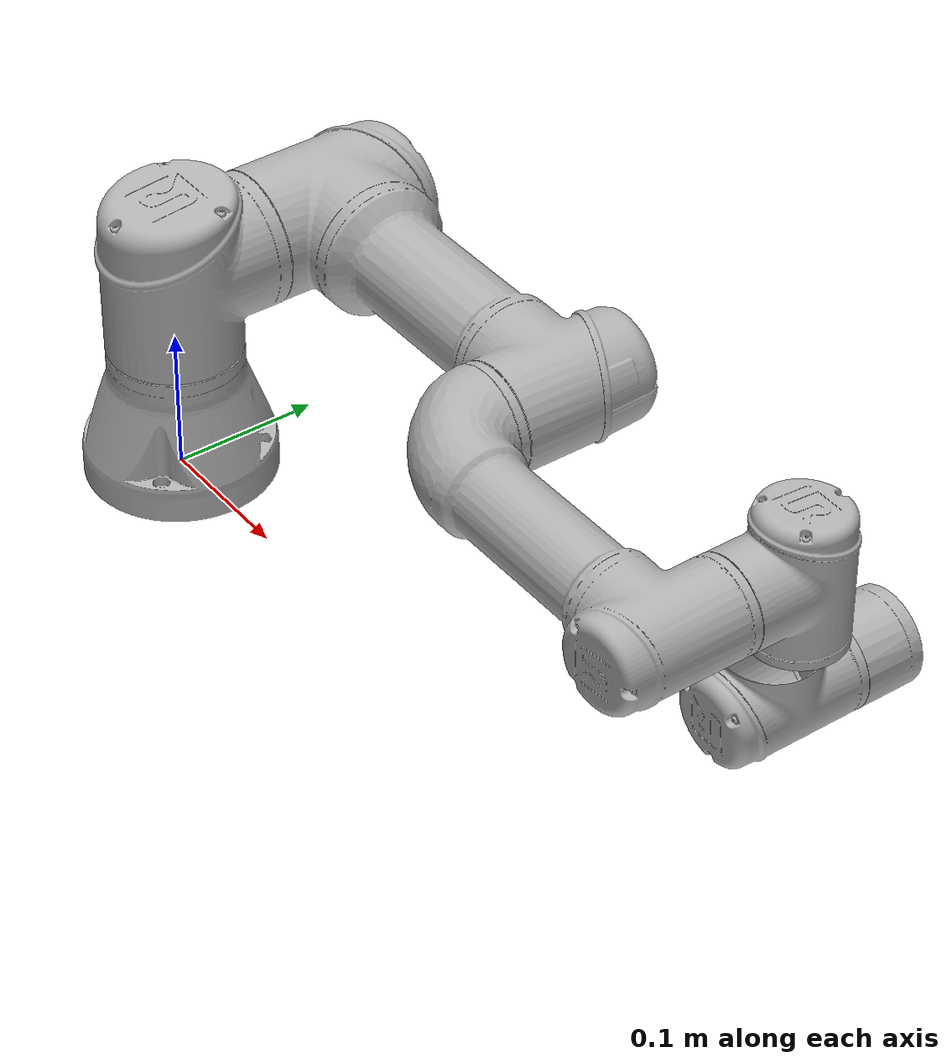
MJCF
<mujoco model="ur3">
  <compiler angle="radian" meshdir="../ur_description/meshes"/>
  <asset>
    <mesh name="base" file="base.stl"/>
    <mesh name="shoulder" file="shoulder.stl"/>
    <mesh name="upperarm" file="upperarm.stl"/>
    <mesh name="forearm" file="forearm.stl"/>
    <mesh name="wrist1" file="wrist1.stl"/>
    <mesh name="wrist2" file="wrist2.stl"/>
    <mesh name="wrist3" file="wrist3.stl"/>
  </asset>
  <worldbody>
    <body name="base_link">
      <inertial pos="0.000000000 0.000000000 0.000000000" quat="0.5 0.5 -0.5 0.5" mass="2.63" diaginertia="0.005955750 0.003383920 0.003336670"/>
      <geom type="mesh" contype="0" conaffinity="0" group="1" density="0" rgba="0.7 0.7 0.7 1" mesh="base"/>
      <geom type="mesh" rgba="0.7 0.7 0.7 1" mesh="base"/>
      <body name="shoulder_link" pos="0 0 0.1519">
        <inertial pos="0.000000000 0.000000000 0.000000000" mass="2.63" diaginertia="0.008423910 0.008376660 0.005955750"/>
        <joint name="shoulder_pan_joint" pos="0 0 0" axis="0 0 1" range="-6.28319 6.28319" actuatorfrcrange="-330 330" armature="0.000012400"/>
        <geom type="mesh" contype="0" conaffinity="0" group="1" density="0" rgba="0.7 0.7 0.7 1" mesh="shoulder"/>
        <geom type="mesh" rgba="0.7 0.7 0.7 1" mesh="shoulder"/>
        <body name="upper_arm_link" pos="0 0.1198 0" quat="0.707107 0 0.707107 0">
          <inertial pos="0.000000000 0.000000000 0.140775556" mass="4.05" diaginertia="0.029954838 0.029907588 0.009949500"/>
          <joint name="shoulder_lift_joint" pos="0 0 0" axis="0 1 0" range="-6.28319 6.28319" actuatorfrcrange="-330 330" armature="0.000012400"/>
          <geom type="mesh" contype="0" conaffinity="0" group="1" density="0" rgba="0.7 0.7 0.7 1" mesh="upperarm"/>
          <geom type="mesh" rgba="0.7 0.7 0.7 1" mesh="upperarm"/>
          <body name="forearm_link" pos="0 -0.0925 0.24365">
            <inertial pos="0.000000000 0.000000000 0.142166667" mass="1.8900000000000001" diaginertia="0.011652494 0.011605244 0.003874500"/>
            <joint name="elbow_joint" pos="0 0 0" axis="0 1 0" range="-3.14159 3.14159" actuatorfrcrange="-150 150" armature="0.000012400"/>
            <geom type="mesh" contype="0" conaffinity="0" group="1" density="0" rgba="0.7 0.7 0.7 1" mesh="forearm"/>
            <geom type="mesh" rgba="0.7 0.7 0.7 1" mesh="forearm"/>
            <body name="wrist_1_link" pos="0 0 0.21325" quat="0.707107 0 0.707107 0">
              <inertial pos="0.000000000 0.037469580 0.000000000" quat="0.5 0.5 -0.5 0.5" mass="1.4300000000000002" diaginertia="0.005130180 0.002415750 0.004917930"/>
              <joint name="wrist_1_joint" pos="0 0 0" axis="0 1 0" range="-6.28319 6.28319" actuatorfrcrange="-54 54" armature="0.000012400"/>
              <geom type="mesh" contype="0" conaffinity="0" group="1" density="0" rgba="0.7 0.7 0.7 1" mesh="wrist1"/>
              <geom type="mesh" rgba="0.7 0.7 0.7 1" mesh="wrist1"/>
              <body name="wrist_2_link" pos="0 0.08505 0">
                <inertial pos="0.000000000 0.000000000 0.037601748" quat="0.5 0.5 -0.5 0.5" mass="1.4300000000000002" diaginertia="0.005148197 0.004935947 0.002415750"/>
                <joint name="wrist_2_joint" pos="0 0 0" axis="0 0 1" range="-6.28319 6.28319" actuatorfrcrange="-54 54" armature="0.000012400"/>
                <geom type="mesh" contype="0" conaffinity="0" group="1" density="0" rgba="0.7 0.7 0.7 1" mesh="wrist2"/>
                <geom type="mesh" rgba="0.7 0.7 0.7 1" mesh="wrist2"/>
                <body name="wrist_3_link" pos="0 0 0.08535">
                  <inertial pos="0 0 0" quat="0.5 0.5 -0.5 0.5" mass="0.35" diaginertia="0.000984375 0.000912187 0.000912187"/>
                  <joint name="wrist_3_joint" pos="0 0 0" axis="0 1 0" range="-6.28319 6.28319" actuatorfrcrange="-54 54" armature="0.000012400"/>
                  <geom type="mesh" contype="0" conaffinity="0" group="1" density="0" rgba="0.7 0.7 0.7 1" mesh="wrist3"/>
                  <geom type="mesh" rgba="0.7 0.7 0.7 1" mesh="wrist3"/>
                  <body name="ee_link" pos="0 0.0819 0" quat="0.707107 0 0 0.707107">
                    <geom size="0.005 0.005 0.005" pos="-0.01 0 0" type="box"/>
                  </body>
                  <!--body name="tool0" pos="0 0.0819 0" quat="0.707107 -0.707107 0 0"/-->
                </body>
              </body>
            </body>
          </body>
        </body>
      </body>
      <body name="base" quat="0 0 0 -1"/>
    </body>
  </worldbody>
  <contact>
    <exclude body1="base_link" body2="shoulder_link"/>
  </contact>
  <actuator>
    <position name="j_shoulder_pan_joint" joint="shoulder_pan_joint" kp="0.01" dampratio="1" gear="101" ctrlrange="-317.300858013 317.300858013" forcerange="-11.000000000 11.000000000"/>
    <position name="j_shoulder_lift_joint" joint="shoulder_lift_joint" kp="0.01" dampratio="1" gear="101" ctrlrange="-317.300858013 317.300858013" forcerange="-11.000000000 11.000000000"/>
    <position name="j_elbow_joint" joint="elbow_joint" kp="0.01" dampratio="1" gear="101" ctrlrange="-317.300858013 317.300858013" forcerange="-11.000000000 11.000000000"/>
    <position name="j_wrist_1_joint" joint="wrist_1_joint" kp="0.01" dampratio="1" gear="101" ctrlrange="-317.300858013 317.300858013" forcerange="-11.000000000 11.000000000"/>
    <position name="j_wrist_2_joint" joint="wrist_2_joint" kp="0.01" dampratio="1" gear="101" ctrlrange="-317.300858013 317.300858013" forcerange="-11.000000000 11.000000000"/>
    <position name="j_wrist_3_joint" joint="wrist_3_joint" kp="0.01" dampratio="1" gear="101" ctrlrange="-317.300858013 317.300858013" forcerange="-11.000000000 11.000000000"/>
  </actuator>
  <sensor>
    <jointpos name="s_shoulder_pan_joint" joint="shoulder_pan_joint"/>
    <jointpos name="s_shoulder_lift_joint" joint="shoulder_lift_joint"/>
    <jointpos name="s_elbow_joint" joint="elbow_joint"/>
    <jointpos name="s_wrist_1_joint" joint="wrist_1_joint"/>
    <jointpos name="s_wrist_2_joint" joint="wrist_2_joint"/>
    <jointpos name="s_wrist_3_joint" joint="wrist_3_joint"/>
  </sensor>
</mujoco>
